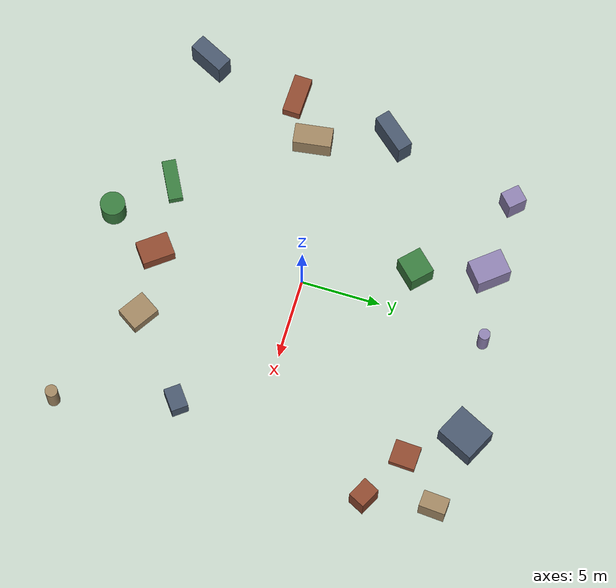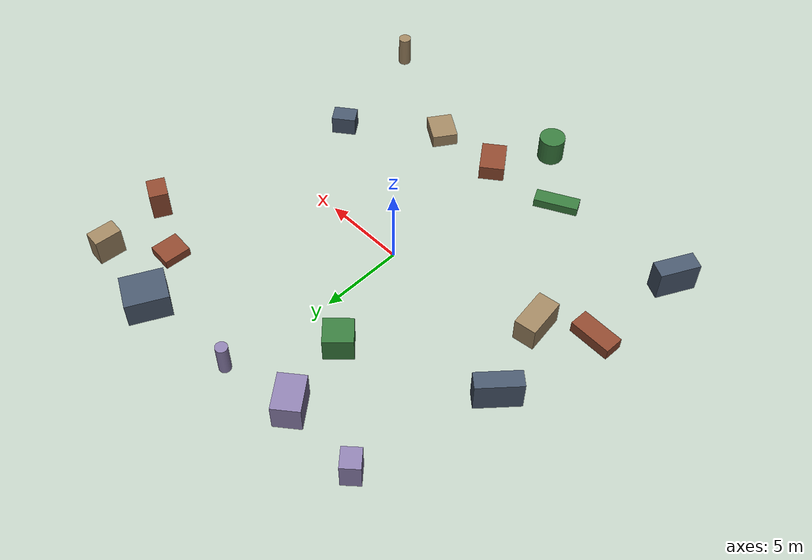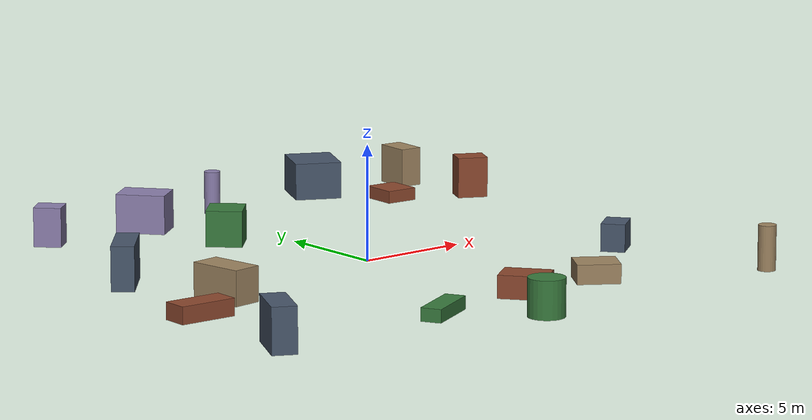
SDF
<sdf version="1.10">
 <world name="robotx_task1_uav_view">
  <gravity>0 0 -9.81</gravity>
  <physics name="physics" type="ode">
   <max_step_size>0.002</max_step_size>
   <real_time_factor>1.0</real_time_factor>
  </physics>
  <scene>
   <ambient>0.14 0.14 0.14 1.0</ambient>
   <background>0.32 0.32 0.38 1.0</background>
   <shadows>true</shadows>
   <grid>false</grid>
  </scene>
  <light name="sun" type="directional">
   <pose>0 0 300 0 0 0</pose>
   <diffuse>0.35 0.35 0.35 1.0</diffuse>
   <specular>0.12 0.12 0.12 1.0</specular>
   <direction>0.12 -0.05 -1.0</direction>
   <attenuation>
    <range>2500</range>
    <constant>0.85</constant>
    <linear>0.001</linear>
    <quadratic>0.00005</quadratic>
   </attenuation>
  </light>
  <plugin filename="gz-sim-physics-system" name="gz::sim::systems::Physics"/>
  <plugin filename="gz-sim-user-commands-system" name="gz::sim::systems::UserCommands"/>
  <plugin filename="gz-sim-scene-broadcaster-system" name="gz::sim::systems::SceneBroadcaster"/>
  <plugin filename="gz-sim-sensors-system" name="gz::sim::systems::Sensors">
   <render_engine>ogre2</render_engine>
  </plugin>
  <model name="scene_clutter_box_000">
   <static>true</static>
   <pose>-9.057 -1.948 0.774 0 0 -1.434108</pose>
   <link name="link">
    <visual name="v">
     <geometry><box><size>2.412 1.297 1.508</size></box></geometry>
     <material><ambient>0.45 0.38 0.32 1.0</ambient><diffuse>0.62 0.52 0.38 1.0</diffuse></material>
    </visual>
   </link>
  </model>
  <model name="scene_clutter_box_001">
   <static>true</static>
   <pose>9.625 -5.077 0.630 0 0 -0.922721</pose>
   <link name="link">
    <visual name="v">
     <geometry><box><size>1.059 1.460 1.220</size></box></geometry>
     <material><ambient>0.18 0.22 0.28 1.0</ambient><diffuse>0.28 0.34 0.42 1.0</diffuse></material>
    </visual>
   </link>
  </model>
  <model name="scene_clutter_box_002">
   <static>true</static>
   <pose>8.924 9.110 0.299 0 0 3.088873</pose>
   <link name="link">
    <visual name="v">
     <geometry><box><size>1.467 1.616 0.558</size></box></geometry>
     <material><ambient>0.35 0.16 0.12 1.0</ambient><diffuse>0.55 0.28 0.18 1.0</diffuse></material>
    </visual>
   </link>
  </model>
  <model name="scene_clutter_box_003">
   <static>true</static>
   <pose>-4.039 -9.644 0.303 0 0 2.050744</pose>
   <link name="link">
    <visual name="v">
     <geometry><box><size>0.886 2.632 0.566</size></box></geometry>
     <material><ambient>0.12 0.30 0.14 1.0</ambient><diffuse>0.22 0.48 0.24 1.0</diffuse></material>
    </visual>
   </link>
  </model>
  <model name="scene_clutter_cyl_004">
   <static>true</static>
   <pose>0.687 11.729 1.005 0 0 1.224686</pose>
   <link name="link">
    <visual name="v">
     <geometry><cylinder><radius>0.356</radius><length>1.910</length></cylinder></geometry>
     <material><ambient>0.40 0.35 0.50 1.0</ambient><diffuse>0.55 0.50 0.68 1.0</diffuse></material>
    </visual>
   </link>
  </model>
  <model name="scene_clutter_box_005">
   <static>true</static>
   <pose>11.568 11.593 0.891 0 0 1.497782</pose>
   <link name="link">
    <visual name="v">
     <geometry><box><size>1.623 1.017 1.743</size></box></geometry>
     <material><ambient>0.45 0.38 0.32 1.0</ambient><diffuse>0.62 0.52 0.38 1.0</diffuse></material>
    </visual>
   </link>
  </model>
  <model name="scene_clutter_box_006">
   <static>true</static>
   <pose>6.858 12.243 0.852 0 0 2.676640</pose>
   <link name="link">
    <visual name="v">
     <geometry><box><size>2.107 2.479 1.664</size></box></geometry>
     <material><ambient>0.18 0.22 0.28 1.0</ambient><diffuse>0.28 0.34 0.42 1.0</diffuse></material>
    </visual>
   </link>
  </model>
  <model name="scene_clutter_box_007">
   <static>true</static>
   <pose>12.201 7.433 0.938 0 0 2.668234</pose>
   <link name="link">
    <visual name="v">
     <geometry><box><size>1.361 1.103 1.836</size></box></geometry>
     <material><ambient>0.35 0.16 0.12 1.0</ambient><diffuse>0.55 0.28 0.18 1.0</diffuse></material>
    </visual>
   </link>
  </model>
  <model name="scene_clutter_cyl_008">
   <static>true</static>
   <pose>-1.079 -12.528 0.859 0 0 -0.673668</pose>
   <link name="link">
    <visual name="v">
     <geometry><cylinder><radius>0.782</radius><length>1.618</length></cylinder></geometry>
     <material><ambient>0.12 0.30 0.14 1.0</ambient><diffuse>0.22 0.48 0.24 1.0</diffuse></material>
    </visual>
   </link>
  </model>
  <model name="scene_clutter_box_009">
   <static>true</static>
   <pose>-3.676 10.894 0.880 0 0 0.681485</pose>
   <link name="link">
    <visual name="v">
     <geometry><box><size>1.607 2.182 1.721</size></box></geometry>
     <material><ambient>0.40 0.35 0.50 1.0</ambient><diffuse>0.55 0.50 0.68 1.0</diffuse></material>
    </visual>
   </link>
  </model>
  <model name="scene_clutter_cyl_010">
   <static>true</static>
   <pose>11.563 -12.273 1.026 0 0 0.920451</pose>
   <link name="link">
    <visual name="v">
     <geometry><cylinder><radius>0.386</radius><length>1.951</length></cylinder></geometry>
     <material><ambient>0.45 0.38 0.32 1.0</ambient><diffuse>0.62 0.52 0.38 1.0</diffuse></material>
    </visual>
   </link>
  </model>
  <model name="scene_clutter_box_011">
   <static>true</static>
   <pose>-10.610 2.839 0.980 0 0 0.853485</pose>
   <link name="link">
    <visual name="v">
     <geometry><box><size>2.631 0.978 1.920</size></box></geometry>
     <material><ambient>0.18 0.22 0.28 1.0</ambient><diffuse>0.28 0.34 0.42 1.0</diffuse></material>
    </visual>
   </link>
  </model>
  <model name="scene_clutter_box_012">
   <static>true</static>
   <pose>0.749 -9.224 0.513 0 0 -2.493431</pose>
   <link name="link">
    <visual name="v">
     <geometry><box><size>1.514 2.053 0.986</size></box></geometry>
     <material><ambient>0.35 0.16 0.12 1.0</ambient><diffuse>0.55 0.28 0.18 1.0</diffuse></material>
    </visual>
   </link>
  </model>
  <model name="scene_clutter_box_013">
   <static>true</static>
   <pose>-2.543 6.520 0.810 0 0 -2.339773</pose>
   <link name="link">
    <visual name="v">
     <geometry><box><size>1.711 1.582 1.580</size></box></geometry>
     <material><ambient>0.12 0.30 0.14 1.0</ambient><diffuse>0.22 0.48 0.24 1.0</diffuse></material>
    </visual>
   </link>
  </model>
  <model name="scene_clutter_box_014">
   <static>true</static>
   <pose>-8.559 11.145 0.883 0 0 -0.823617</pose>
   <link name="link">
    <visual name="v">
     <geometry><box><size>1.207 1.110 1.726</size></box></geometry>
     <material><ambient>0.40 0.35 0.50 1.0</ambient><diffuse>0.55 0.50 0.68 1.0</diffuse></material>
    </visual>
   </link>
  </model>
  <model name="scene_clutter_box_015">
   <static>true</static>
   <pose>4.875 -8.996 0.438 0 0 2.561896</pose>
   <link name="link">
    <visual name="v">
     <geometry><box><size>1.847 1.553 0.836</size></box></geometry>
     <material><ambient>0.45 0.38 0.32 1.0</ambient><diffuse>0.62 0.52 0.38 1.0</diffuse></material>
    </visual>
   </link>
  </model>
  <model name="scene_clutter_box_016">
   <static>true</static>
   <pose>-12.434 -9.666 0.982 0 0 -2.043229</pose>
   <link name="link">
    <visual name="v">
     <geometry><box><size>2.403 1.033 1.925</size></box></geometry>
     <material><ambient>0.18 0.22 0.28 1.0</ambient><diffuse>0.28 0.34 0.42 1.0</diffuse></material>
    </visual>
   </link>
  </model>
  <model name="scene_clutter_box_017">
   <static>true</static>
   <pose>-11.749 -3.772 0.391 0 0 1.537761</pose>
   <link name="link">
    <visual name="v">
     <geometry><box><size>1.143 2.536 0.743</size></box></geometry>
     <material><ambient>0.35 0.16 0.12 1.0</ambient><diffuse>0.55 0.28 0.18 1.0</diffuse></material>
    </visual>
   </link>
  </model>
  <model name="uav_dataset_camera">
   <static>false</static>
   <pose>0 0 26 0 0 0</pose>
   <plugin filename="librobotx_overhead_motion_plugin.dylib" name="robotx::OverheadMotionPlugin">
    <radius_x_m>9.12336</radius_x_m>
    <radius_y_m>7.37419</radius_y_m>
    <angular_speed_rad_s>0.035063</angular_speed_rad_s>
    <phase_rad>1.168498</phase_rad>
    <z_wobble_m>0.02043</z_wobble_m>
    <z_wobble_hz>0.04319</z_wobble_hz>
    <z_wobble_phase_rad>3.537949</z_wobble_phase_rad>
   </plugin>
   <link name="camera_link">
    <gravity>false</gravity>
    <sensor name="top_down_rgb" type="camera">
     <always_on>true</always_on>
     <update_rate>20</update_rate>
     <pose>0 0 0 0 1.57079632679 0</pose>
     <camera>
      <horizontal_fov>1.05</horizontal_fov>
      <image><width>1920</width><height>1080</height><format>R8G8B8</format></image>
      <clip><near>0.2</near><far>600</far></clip>
     </camera>
     <topic>/robotx/uav/camera/image_raw</topic>
     <visualize>true</visualize>
    </sensor>
   </link>
  </model>
 </world>
</sdf>
